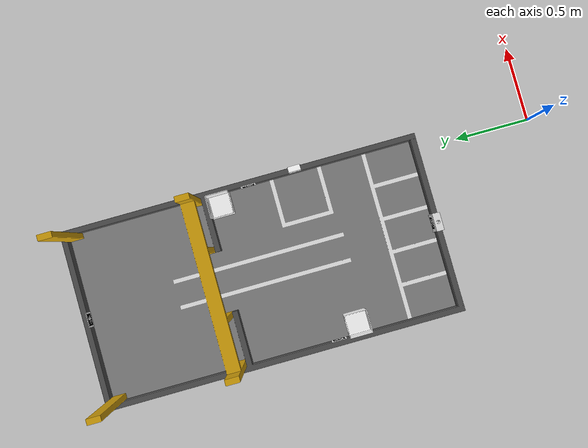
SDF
<sdf version='1.6'>
  <world name='default'>
    <light name='sun' type='directional'>
      <cast_shadows>1</cast_shadows>
      <pose frame=''>0 0 10 0 -0 0</pose>
      <diffuse>0.8 0.8 0.8 1</diffuse>
      <specular>0.1 0.1 0.1 1</specular>
      <attenuation>
        <range>1000</range>
        <constant>0.9</constant>
        <linear>0.01</linear>
        <quadratic>0.001</quadratic>
      </attenuation>
      <direction>-0.5 0.5 -1</direction>
    </light>
    <model name='ground_plane'>
      <static>1</static>
      <link name='link'>
        <collision name='collision'>
          <geometry>
            <plane>
              <normal>0 0 1</normal>
              <size>100 100</size>
            </plane>
          </geometry>
          <surface>
            <friction>
              <ode>
                <mu>100</mu>
                <mu2>50</mu2>
              </ode>
              <torsional>
                <ode/>
              </torsional>
            </friction>
            <contact>
              <ode/>
            </contact>
            <bounce/>
          </surface>
          <max_contacts>10</max_contacts>
        </collision>
        <visual name='visual'>
          <cast_shadows>0</cast_shadows>
          <geometry>
            <plane>
              <normal>0 0 1</normal>
              <size>100 100</size>
            </plane>
          </geometry>
          <material>
            <script>
              <uri>file://media/materials/scripts/gazebo.material</uri>
              <name>Gazebo/Grey</name>
            </script>
          </material>
        </visual>
        <self_collide>0</self_collide>
        <kinematic>0</kinematic>
        <gravity>1</gravity>
      </link>
    </model>
    <gravity>0 0 -9.8</gravity>
    <magnetic_field>6e-06 2.3e-05 -4.2e-05</magnetic_field>
    <atmosphere type='adiabatic'/>
    <physics name='default_physics' default='0' type='ode'>
      <max_step_size>0.001</max_step_size>
      <real_time_factor>1</real_time_factor>
      <real_time_update_rate>1000</real_time_update_rate>
    </physics>
    <scene>
      <ambient>0.4 0.4 0.4 1</ambient>
      <background>0.7 0.7 0.7 1</background>
      <shadows>1</shadows>
    </scene>
    <spherical_coordinates>
      <surface_model>EARTH_WGS84</surface_model>
      <latitude_deg>0</latitude_deg>
      <longitude_deg>0</longitude_deg>
      <elevation>0</elevation>
      <heading_deg>0</heading_deg>
    </spherical_coordinates>
     <model name='field'>
      <static>1</static>
      <link name='link'>
        <collision name='collision'>
          <geometry>
            <mesh>
              <uri>model://field/meshes/field.dae</uri>
              <scale>1 1 1</scale>
            </mesh>
          </geometry>
          <max_contacts>10</max_contacts>
          <surface>
            <contact>
              <ode/>
            </contact>
            <bounce/>
            <friction>
              <torsional>
                <ode/>
              </torsional>
              <ode/>
            </friction>
          </surface>
        </collision>
        <visual name='visual'>
          <geometry>
            <mesh>
              <uri>model://field/meshes/field.dae</uri>
              <scale>1 1 1</scale>
            </mesh>
          </geometry>
        </visual>
        <self_collide>0</self_collide>
        <kinematic>0</kinematic>
        <gravity>1</gravity>
      </link>
      <pose frame=''>-0.5 2 0 0 0 1.570795</pose>
    </model>

  <plugin name="world_plugin" filename="libworld_plugin.so"/>

  </world>
</sdf>
